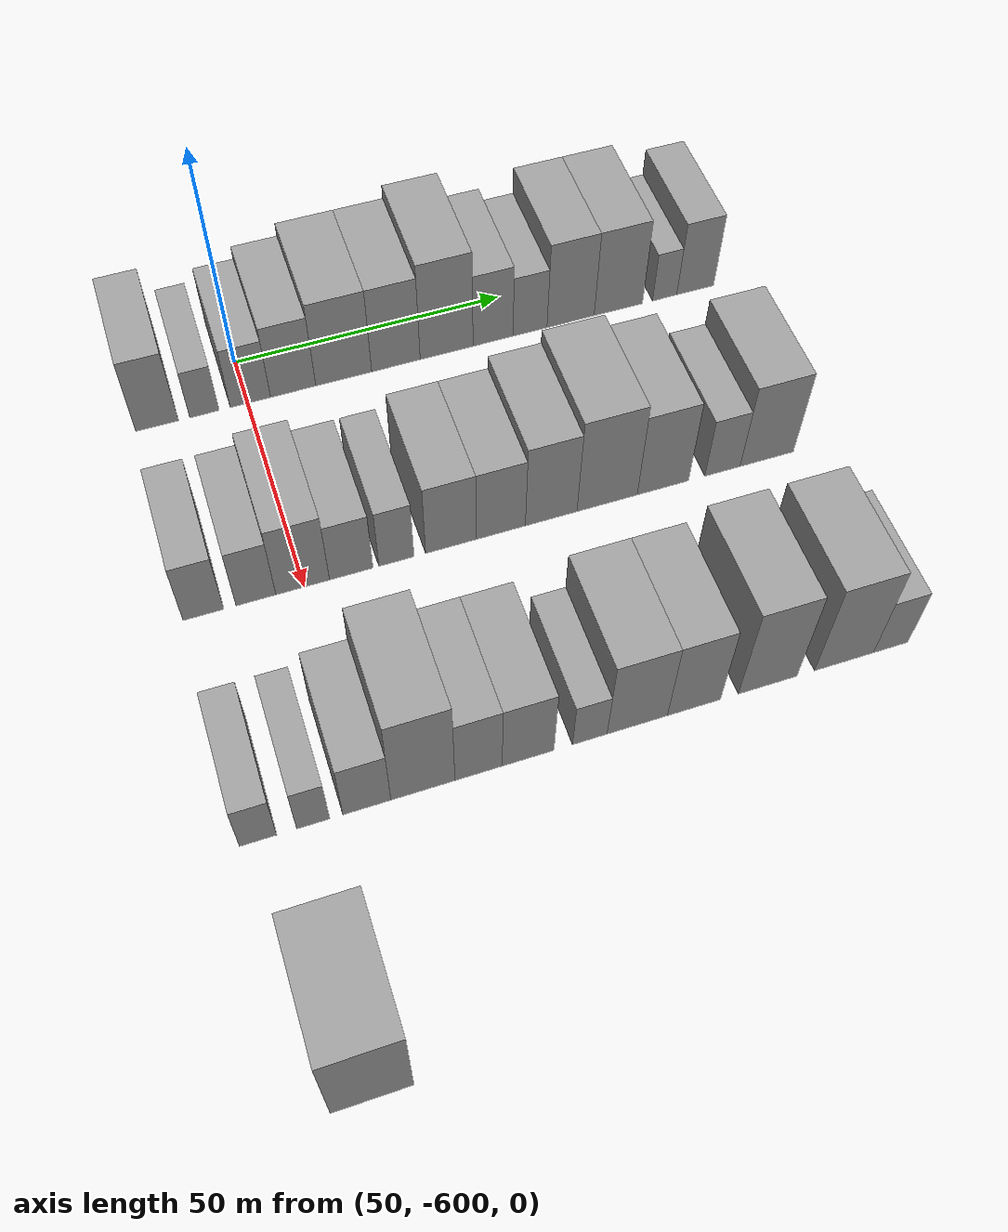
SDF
<sdf version="1.6">
 <world name="default">
  <model name="building_1">
   <static>1</static>
   <pose>50.0000 -616.2092 0 0.000000 0.000000 0.000000</pose>
   <link name="link">
    <pose>0 0 9.00 0 0 0</pose>
    <collision name="collision"><geometry><box><size>20.0000 7.5817 18.0000</size></box></geometry></collision>
    <visual name="visual">
     <cast_shadows>0</cast_shadows>
     <geometry><box><size>20.0000 7.5817 18.0000</size></box></geometry>
     <material>
      <script>
       <uri>model://grey_wall/materials/scripts</uri>
       <uri>model://grey_wall/materials/textures</uri>
       <name>vrc/grey_wall</name>
      </script>
     </material>
    </visual>
   </link>
  </model>
  <model name="building_2">
   <static>1</static>
   <pose>50.0000 -607.7861 0 0.000000 0.000000 0.000000</pose>
   <link name="link">
    <pose>0 0 6.00 0 0 0</pose>
    <collision name="collision"><geometry><box><size>20.0000 5.2644 12.0000</size></box></geometry></collision>
    <visual name="visual">
     <cast_shadows>0</cast_shadows>
     <geometry><box><size>20.0000 5.2644 12.0000</size></box></geometry>
     <material>
      <script>
       <uri>model://grey_wall/materials/scripts</uri>
       <uri>model://grey_wall/materials/textures</uri>
       <name>vrc/grey_wall</name>
      </script>
     </material>
    </visual>
   </link>
  </model>
  <model name="building_3">
   <static>1</static>
   <pose>50.0000 -599.5087 0 0.000000 0.000000 0.000000</pose>
   <link name="link">
    <pose>0 0 7.50 0 0 0</pose>
    <collision name="collision"><geometry><box><size>20.0000 7.2904 15.0000</size></box></geometry></collision>
    <visual name="visual">
     <cast_shadows>0</cast_shadows>
     <geometry><box><size>20.0000 7.2904 15.0000</size></box></geometry>
     <material>
      <script>
       <uri>model://grey_wall/materials/scripts</uri>
       <uri>model://grey_wall/materials/textures</uri>
       <name>vrc/grey_wall</name>
      </script>
     </material>
    </visual>
   </link>
  </model>
  <model name="building_4">
   <static>1</static>
   <pose>50.0000 -591.7277 0 0.000000 0.000000 0.000000</pose>
   <link name="link">
    <pose>0 0 9.00 0 0 0</pose>
    <collision name="collision"><geometry><box><size>20.0000 8.2717 18.0000</size></box></geometry></collision>
    <visual name="visual">
     <cast_shadows>0</cast_shadows>
     <geometry><box><size>20.0000 8.2717 18.0000</size></box></geometry>
     <material>
      <script>
       <uri>model://grey_wall/materials/scripts</uri>
       <uri>model://grey_wall/materials/textures</uri>
       <name>vrc/grey_wall</name>
      </script>
     </material>
    </visual>
   </link>
  </model>
  <model name="building_5">
   <static>1</static>
   <pose>50.0000 -582.4163 0 0.000000 0.000000 0.000000</pose>
   <link name="link">
    <pose>0 0 10.50 0 0 0</pose>
    <collision name="collision"><geometry><box><size>20.0000 10.3511 21.0000</size></box></geometry></collision>
    <visual name="visual">
     <cast_shadows>0</cast_shadows>
     <geometry><box><size>20.0000 10.3511 21.0000</size></box></geometry>
     <material>
      <script>
       <uri>model://grey_wall/materials/scripts</uri>
       <uri>model://grey_wall/materials/textures</uri>
       <name>vrc/grey_wall</name>
      </script>
     </material>
    </visual>
   </link>
  </model>
  <model name="building_6">
   <static>1</static>
   <pose>50.0000 -572.6963 0 0.000000 0.000000 0.000000</pose>
   <link name="link">
    <pose>0 0 10.50 0 0 0</pose>
    <collision name="collision"><geometry><box><size>20.0000 9.0889 21.0000</size></box></geometry></collision>
    <visual name="visual">
     <cast_shadows>0</cast_shadows>
     <geometry><box><size>20.0000 9.0889 21.0000</size></box></geometry>
     <material>
      <script>
       <uri>model://grey_wall/materials/scripts</uri>
       <uri>model://grey_wall/materials/textures</uri>
       <name>vrc/grey_wall</name>
      </script>
     </material>
    </visual>
   </link>
  </model>
  <model name="building_7">
   <static>1</static>
   <pose>50.0000 -563.1364 0 0.000000 0.000000 0.000000</pose>
   <link name="link">
    <pose>0 0 12.00 0 0 0</pose>
    <collision name="collision"><geometry><box><size>20.0000 10.0308 24.0000</size></box></geometry></collision>
    <visual name="visual">
     <cast_shadows>0</cast_shadows>
     <geometry><box><size>20.0000 10.0308 24.0000</size></box></geometry>
     <material>
      <script>
       <uri>model://grey_wall/materials/scripts</uri>
       <uri>model://grey_wall/materials/textures</uri>
       <name>vrc/grey_wall</name>
      </script>
     </material>
    </visual>
   </link>
  </model>
  <model name="building_8">
   <static>1</static>
   <pose>50.0000 -554.2968 0 0.000000 0.000000 0.000000</pose>
   <link name="link">
    <pose>0 0 9.00 0 0 0</pose>
    <collision name="collision"><geometry><box><size>20.0000 7.6485 18.0000</size></box></geometry></collision>
    <visual name="visual">
     <cast_shadows>0</cast_shadows>
     <geometry><box><size>20.0000 7.6485 18.0000</size></box></geometry>
     <material>
      <script>
       <uri>model://grey_wall/materials/scripts</uri>
       <uri>model://grey_wall/materials/textures</uri>
       <name>vrc/grey_wall</name>
      </script>
     </material>
    </visual>
   </link>
  </model>
  <model name="building_9">
   <static>1</static>
   <pose>50.0000 -547.1704 0 0.000000 0.000000 0.000000</pose>
   <link name="link">
    <pose>0 0 7.50 0 0 0</pose>
    <collision name="collision"><geometry><box><size>20.0000 6.6045 15.0000</size></box></geometry></collision>
    <visual name="visual">
     <cast_shadows>0</cast_shadows>
     <geometry><box><size>20.0000 6.6045 15.0000</size></box></geometry>
     <material>
      <script>
       <uri>model://grey_wall/materials/scripts</uri>
       <uri>model://grey_wall/materials/textures</uri>
       <name>vrc/grey_wall</name>
      </script>
     </material>
    </visual>
   </link>
  </model>
  <model name="building_10">
   <static>1</static>
   <pose>50.0000 -539.2522 0 0.000000 0.000000 0.000000</pose>
   <link name="link">
    <pose>0 0 10.50 0 0 0</pose>
    <collision name="collision"><geometry><box><size>20.0000 9.2319 21.0000</size></box></geometry></collision>
    <visual name="visual">
     <cast_shadows>0</cast_shadows>
     <geometry><box><size>20.0000 9.2319 21.0000</size></box></geometry>
     <material>
      <script>
       <uri>model://grey_wall/materials/scripts</uri>
       <uri>model://grey_wall/materials/textures</uri>
       <name>vrc/grey_wall</name>
      </script>
     </material>
    </visual>
   </link>
  </model>
  <model name="building_11">
   <static>1</static>
   <pose>50.0000 -529.8403 0 0.000000 0.000000 0.000000</pose>
   <link name="link">
    <pose>0 0 10.50 0 0 0</pose>
    <collision name="collision"><geometry><box><size>20.0000 9.5919 21.0000</size></box></geometry></collision>
    <visual name="visual">
     <cast_shadows>0</cast_shadows>
     <geometry><box><size>20.0000 9.5919 21.0000</size></box></geometry>
     <material>
      <script>
       <uri>model://grey_wall/materials/scripts</uri>
       <uri>model://grey_wall/materials/textures</uri>
       <name>vrc/grey_wall</name>
      </script>
     </material>
    </visual>
   </link>
  </model>
  <model name="building_12">
   <static>1</static>
   <pose>50.0000 -520.6214 0 0.000000 0.000000 0.000000</pose>
   <link name="link">
    <pose>0 0 6.00 0 0 0</pose>
    <collision name="collision"><geometry><box><size>20.0000 4.8460 12.0000</size></box></geometry></collision>
    <visual name="visual">
     <cast_shadows>0</cast_shadows>
     <geometry><box><size>20.0000 4.8460 12.0000</size></box></geometry>
     <material>
      <script>
       <uri>model://grey_wall/materials/scripts</uri>
       <uri>model://grey_wall/materials/textures</uri>
       <name>vrc/grey_wall</name>
      </script>
     </material>
    </visual>
   </link>
  </model>
  <model name="building_13">
   <static>1</static>
   <pose>50.0000 -514.4688 0 0.000000 0.000000 0.000000</pose>
   <link name="link">
    <pose>0 0 9.00 0 0 0</pose>
    <collision name="collision"><geometry><box><size>20.0000 7.4591 18.0000</size></box></geometry></collision>
    <visual name="visual">
     <cast_shadows>0</cast_shadows>
     <geometry><box><size>20.0000 7.4591 18.0000</size></box></geometry>
     <material>
      <script>
       <uri>model://grey_wall/materials/scripts</uri>
       <uri>model://grey_wall/materials/textures</uri>
       <name>vrc/grey_wall</name>
      </script>
     </material>
    </visual>
   </link>
  </model>
  <model name="building_126">
   <static>1</static>
   <pose>90.0000 -616.6560 0 0.000000 0.000000 0.000000</pose>
   <link name="link">
    <pose>0 0 7.50 0 0 0</pose>
    <collision name="collision"><geometry><box><size>20.0000 6.6879 15.0000</size></box></geometry></collision>
    <visual name="visual">
     <cast_shadows>0</cast_shadows>
     <geometry><box><size>20.0000 6.6879 15.0000</size></box></geometry>
     <material>
      <script>
       <uri>model://grey_wall/materials/scripts</uri>
       <uri>model://grey_wall/materials/textures</uri>
       <name>vrc/grey_wall</name>
      </script>
     </material>
    </visual>
   </link>
  </model>
  <model name="building_127">
   <static>1</static>
   <pose>90.0000 -608.0186 0 0.000000 0.000000 0.000000</pose>
   <link name="link">
    <pose>0 0 7.50 0 0 0</pose>
    <collision name="collision"><geometry><box><size>20.0000 6.5870 15.0000</size></box></geometry></collision>
    <visual name="visual">
     <cast_shadows>0</cast_shadows>
     <geometry><box><size>20.0000 6.5870 15.0000</size></box></geometry>
     <material>
      <script>
       <uri>model://grey_wall/materials/scripts</uri>
       <uri>model://grey_wall/materials/textures</uri>
       <name>vrc/grey_wall</name>
      </script>
     </material>
    </visual>
   </link>
  </model>
  <model name="building_128">
   <static>1</static>
   <pose>90.0000 -600.2332 0 0.000000 0.000000 0.000000</pose>
   <link name="link">
    <pose>0 0 9.00 0 0 0</pose>
    <collision name="collision"><geometry><box><size>20.0000 8.9839 18.0000</size></box></geometry></collision>
    <visual name="visual">
     <cast_shadows>0</cast_shadows>
     <geometry><box><size>20.0000 8.9839 18.0000</size></box></geometry>
     <material>
      <script>
       <uri>model://grey_wall/materials/scripts</uri>
       <uri>model://grey_wall/materials/textures</uri>
       <name>vrc/grey_wall</name>
      </script>
     </material>
    </visual>
   </link>
  </model>
  <model name="building_129">
   <static>1</static>
   <pose>90.0000 -592.0565 0 0.000000 0.000000 0.000000</pose>
   <link name="link">
    <pose>0 0 7.50 0 0 0</pose>
    <collision name="collision"><geometry><box><size>20.0000 7.3694 15.0000</size></box></geometry></collision>
    <visual name="visual">
     <cast_shadows>0</cast_shadows>
     <geometry><box><size>20.0000 7.3694 15.0000</size></box></geometry>
     <material>
      <script>
       <uri>model://grey_wall/materials/scripts</uri>
       <uri>model://grey_wall/materials/textures</uri>
       <name>vrc/grey_wall</name>
      </script>
     </material>
    </visual>
   </link>
  </model>
  <model name="building_130">
   <static>1</static>
   <pose>90.0000 -584.3663 0 0.000000 0.000000 0.000000</pose>
   <link name="link">
    <pose>0 0 7.50 0 0 0</pose>
    <collision name="collision"><geometry><box><size>20.0000 6.0110 15.0000</size></box></geometry></collision>
    <visual name="visual">
     <cast_shadows>0</cast_shadows>
     <geometry><box><size>20.0000 6.0110 15.0000</size></box></geometry>
     <material>
      <script>
       <uri>model://grey_wall/materials/scripts</uri>
       <uri>model://grey_wall/materials/textures</uri>
       <name>vrc/grey_wall</name>
      </script>
     </material>
    </visual>
   </link>
  </model>
  <model name="building_131">
   <static>1</static>
   <pose>90.0000 -574.9528 0 0.000000 0.000000 0.000000</pose>
   <link name="link">
    <pose>0 0 9.00 0 0 0</pose>
    <collision name="collision"><geometry><box><size>20.0000 8.8160 18.0000</size></box></geometry></collision>
    <visual name="visual">
     <cast_shadows>0</cast_shadows>
     <geometry><box><size>20.0000 8.8160 18.0000</size></box></geometry>
     <material>
      <script>
       <uri>model://grey_wall/materials/scripts</uri>
       <uri>model://grey_wall/materials/textures</uri>
       <name>vrc/grey_wall</name>
      </script>
     </material>
    </visual>
   </link>
  </model>
  <model name="building_132">
   <static>1</static>
   <pose>90.0000 -566.2503 0 0.000000 0.000000 0.000000</pose>
   <link name="link">
    <pose>0 0 9.00 0 0 0</pose>
    <collision name="collision"><geometry><box><size>20.0000 8.5891 18.0000</size></box></geometry></collision>
    <visual name="visual">
     <cast_shadows>0</cast_shadows>
     <geometry><box><size>20.0000 8.5891 18.0000</size></box></geometry>
     <material>
      <script>
       <uri>model://grey_wall/materials/scripts</uri>
       <uri>model://grey_wall/materials/textures</uri>
       <name>vrc/grey_wall</name>
      </script>
     </material>
    </visual>
   </link>
  </model>
  <model name="building_133">
   <static>1</static>
   <pose>90.0000 -557.3646 0 0.000000 0.000000 0.000000</pose>
   <link name="link">
    <pose>0 0 10.50 0 0 0</pose>
    <collision name="collision"><geometry><box><size>20.0000 9.1823 21.0000</size></box></geometry></collision>
    <visual name="visual">
     <cast_shadows>0</cast_shadows>
     <geometry><box><size>20.0000 9.1823 21.0000</size></box></geometry>
     <material>
      <script>
       <uri>model://grey_wall/materials/scripts</uri>
       <uri>model://grey_wall/materials/textures</uri>
       <name>vrc/grey_wall</name>
      </script>
     </material>
    </visual>
   </link>
  </model>
  <model name="building_134">
   <static>1</static>
   <pose>90.0000 -547.3345 0 0.000000 0.000000 0.000000</pose>
   <link name="link">
    <pose>0 0 12.00 0 0 0</pose>
    <collision name="collision"><geometry><box><size>20.0000 10.8779 24.0000</size></box></geometry></collision>
    <visual name="visual">
     <cast_shadows>0</cast_shadows>
     <geometry><box><size>20.0000 10.8779 24.0000</size></box></geometry>
     <material>
      <script>
       <uri>model://grey_wall/materials/scripts</uri>
       <uri>model://grey_wall/materials/textures</uri>
       <name>vrc/grey_wall</name>
      </script>
     </material>
    </visual>
   </link>
  </model>
  <model name="building_135">
   <static>1</static>
   <pose>90.0000 -537.1961 0 0.000000 0.000000 0.000000</pose>
   <link name="link">
    <pose>0 0 10.50 0 0 0</pose>
    <collision name="collision"><geometry><box><size>20.0000 9.3988 21.0000</size></box></geometry></collision>
    <visual name="visual">
     <cast_shadows>0</cast_shadows>
     <geometry><box><size>20.0000 9.3988 21.0000</size></box></geometry>
     <material>
      <script>
       <uri>model://grey_wall/materials/scripts</uri>
       <uri>model://grey_wall/materials/textures</uri>
       <name>vrc/grey_wall</name>
      </script>
     </material>
    </visual>
   </link>
  </model>
  <model name="building_136">
   <static>1</static>
   <pose>90.0000 -526.2294 0 0.000000 0.000000 0.000000</pose>
   <link name="link">
    <pose>0 0 7.50 0 0 0</pose>
    <collision name="collision"><geometry><box><size>20.0000 6.5344 15.0000</size></box></geometry></collision>
    <visual name="visual">
     <cast_shadows>0</cast_shadows>
     <geometry><box><size>20.0000 6.5344 15.0000</size></box></geometry>
     <material>
      <script>
       <uri>model://grey_wall/materials/scripts</uri>
       <uri>model://grey_wall/materials/textures</uri>
       <name>vrc/grey_wall</name>
      </script>
     </material>
    </visual>
   </link>
  </model>
  <model name="building_137">
   <static>1</static>
   <pose>90.0000 -517.9398 0 0.000000 0.000000 0.000000</pose>
   <link name="link">
    <pose>0 0 10.50 0 0 0</pose>
    <collision name="collision"><geometry><box><size>20.0000 10.0449 21.0000</size></box></geometry></collision>
    <visual name="visual">
     <cast_shadows>0</cast_shadows>
     <geometry><box><size>20.0000 10.0449 21.0000</size></box></geometry>
     <material>
      <script>
       <uri>model://grey_wall/materials/scripts</uri>
       <uri>model://grey_wall/materials/textures</uri>
       <name>vrc/grey_wall</name>
      </script>
     </material>
    </visual>
   </link>
  </model>
  <model name="building_261">
   <static>1</static>
   <pose>130.0000 -617.2002 0 0.000000 0.000000 0.000000</pose>
   <link name="link">
    <pose>0 0 6.00 0 0 0</pose>
    <collision name="collision"><geometry><box><size>20.0000 5.5997 12.0000</size></box></geometry></collision>
    <visual name="visual">
     <cast_shadows>0</cast_shadows>
     <geometry><box><size>20.0000 5.5997 12.0000</size></box></geometry>
     <material>
      <script>
       <uri>model://grey_wall/materials/scripts</uri>
       <uri>model://grey_wall/materials/textures</uri>
       <name>vrc/grey_wall</name>
      </script>
     </material>
    </visual>
   </link>
  </model>
  <model name="building_262">
   <static>1</static>
   <pose>130.0000 -608.8896 0 0.000000 0.000000 0.000000</pose>
   <link name="link">
    <pose>0 0 6.00 0 0 0</pose>
    <collision name="collision"><geometry><box><size>20.0000 5.0214 12.0000</size></box></geometry></collision>
    <visual name="visual">
     <cast_shadows>0</cast_shadows>
     <geometry><box><size>20.0000 5.0214 12.0000</size></box></geometry>
     <material>
      <script>
       <uri>model://grey_wall/materials/scripts</uri>
       <uri>model://grey_wall/materials/textures</uri>
       <name>vrc/grey_wall</name>
      </script>
     </material>
    </visual>
   </link>
  </model>
  <model name="building_263">
   <static>1</static>
   <pose>130.0000 -600.6864 0 0.000000 0.000000 0.000000</pose>
   <link name="link">
    <pose>0 0 7.50 0 0 0</pose>
    <collision name="collision"><geometry><box><size>20.0000 7.3850 15.0000</size></box></geometry></collision>
    <visual name="visual">
     <cast_shadows>0</cast_shadows>
     <geometry><box><size>20.0000 7.3850 15.0000</size></box></geometry>
     <material>
      <script>
       <uri>model://grey_wall/materials/scripts</uri>
       <uri>model://grey_wall/materials/textures</uri>
       <name>vrc/grey_wall</name>
      </script>
     </material>
    </visual>
   </link>
  </model>
  <model name="building_264">
   <static>1</static>
   <pose>130.0000 -591.9987 0 0.000000 0.000000 0.000000</pose>
   <link name="link">
    <pose>0 0 12.00 0 0 0</pose>
    <collision name="collision"><geometry><box><size>20.0000 9.9903 24.0000</size></box></geometry></collision>
    <visual name="visual">
     <cast_shadows>0</cast_shadows>
     <geometry><box><size>20.0000 9.9903 24.0000</size></box></geometry>
     <material>
      <script>
       <uri>model://grey_wall/materials/scripts</uri>
       <uri>model://grey_wall/materials/textures</uri>
       <name>vrc/grey_wall</name>
      </script>
     </material>
    </visual>
   </link>
  </model>
  <model name="building_265">
   <static>1</static>
   <pose>130.0000 -583.2763 0 0.000000 0.000000 0.000000</pose>
   <link name="link">
    <pose>0 0 9.00 0 0 0</pose>
    <collision name="collision"><geometry><box><size>20.0000 7.4545 18.0000</size></box></geometry></collision>
    <visual name="visual">
     <cast_shadows>0</cast_shadows>
     <geometry><box><size>20.0000 7.4545 18.0000</size></box></geometry>
     <material>
      <script>
       <uri>model://grey_wall/materials/scripts</uri>
       <uri>model://grey_wall/materials/textures</uri>
       <name>vrc/grey_wall</name>
      </script>
     </material>
    </visual>
   </link>
  </model>
  <model name="building_266">
   <static>1</static>
   <pose>130.0000 -575.3948 0 0.000000 0.000000 0.000000</pose>
   <link name="link">
    <pose>0 0 9.00 0 0 0</pose>
    <collision name="collision"><geometry><box><size>20.0000 8.3086 18.0000</size></box></geometry></collision>
    <visual name="visual">
     <cast_shadows>0</cast_shadows>
     <geometry><box><size>20.0000 8.3086 18.0000</size></box></geometry>
     <material>
      <script>
       <uri>model://grey_wall/materials/scripts</uri>
       <uri>model://grey_wall/materials/textures</uri>
       <name>vrc/grey_wall</name>
      </script>
     </material>
    </visual>
   </link>
  </model>
  <model name="building_267">
   <static>1</static>
   <pose>130.0000 -565.4395 0 0.000000 0.000000 0.000000</pose>
   <link name="link">
    <pose>0 0 6.00 0 0 0</pose>
    <collision name="collision"><geometry><box><size>20.0000 5.6020 12.0000</size></box></geometry></collision>
    <visual name="visual">
     <cast_shadows>0</cast_shadows>
     <geometry><box><size>20.0000 5.6020 12.0000</size></box></geometry>
     <material>
      <script>
       <uri>model://grey_wall/materials/scripts</uri>
       <uri>model://grey_wall/materials/textures</uri>
       <name>vrc/grey_wall</name>
      </script>
     </material>
    </visual>
   </link>
  </model>
  <model name="building_268">
   <static>1</static>
   <pose>130.0000 -557.6693 0 0.000000 0.000000 0.000000</pose>
   <link name="link">
    <pose>0 0 10.50 0 0 0</pose>
    <collision name="collision"><geometry><box><size>20.0000 9.9383 21.0000</size></box></geometry></collision>
    <visual name="visual">
     <cast_shadows>0</cast_shadows>
     <geometry><box><size>20.0000 9.9383 21.0000</size></box></geometry>
     <material>
      <script>
       <uri>model://grey_wall/materials/scripts</uri>
       <uri>model://grey_wall/materials/textures</uri>
       <name>vrc/grey_wall</name>
      </script>
     </material>
    </visual>
   </link>
  </model>
  <model name="building_269">
   <static>1</static>
   <pose>130.0000 -548.2627 0 0.000000 0.000000 0.000000</pose>
   <link name="link">
    <pose>0 0 10.50 0 0 0</pose>
    <collision name="collision"><geometry><box><size>20.0000 8.8751 21.0000</size></box></geometry></collision>
    <visual name="visual">
     <cast_shadows>0</cast_shadows>
     <geometry><box><size>20.0000 8.8751 21.0000</size></box></geometry>
     <material>
      <script>
       <uri>model://grey_wall/materials/scripts</uri>
       <uri>model://grey_wall/materials/textures</uri>
       <name>vrc/grey_wall</name>
      </script>
     </material>
    </visual>
   </link>
  </model>
  <model name="building_270">
   <static>1</static>
   <pose>130.0000 -535.8250 0 0.000000 0.000000 0.000000</pose>
   <link name="link">
    <pose>0 0 12.00 0 0 0</pose>
    <collision name="collision"><geometry><box><size>20.0000 10.0003 24.0000</size></box></geometry></collision>
    <visual name="visual">
     <cast_shadows>0</cast_shadows>
     <geometry><box><size>20.0000 10.0003 24.0000</size></box></geometry>
     <material>
      <script>
       <uri>model://grey_wall/materials/scripts</uri>
       <uri>model://grey_wall/materials/textures</uri>
       <name>vrc/grey_wall</name>
      </script>
     </material>
    </visual>
   </link>
  </model>
  <model name="building_271">
   <static>1</static>
   <pose>130.0000 -522.7123 0 0.000000 0.000000 0.000000</pose>
   <link name="link">
    <pose>0 0 12.00 0 0 0</pose>
    <collision name="collision"><geometry><box><size>20.0000 10.2251 24.0000</size></box></geometry></collision>
    <visual name="visual">
     <cast_shadows>0</cast_shadows>
     <geometry><box><size>20.0000 10.2251 24.0000</size></box></geometry>
     <material>
      <script>
       <uri>model://grey_wall/materials/scripts</uri>
       <uri>model://grey_wall/materials/textures</uri>
       <name>vrc/grey_wall</name>
      </script>
     </material>
    </visual>
   </link>
  </model>
  <model name="building_272">
   <static>1</static>
   <pose>130.0000 -514.5746 0 0.000000 0.000000 0.000000</pose>
   <link name="link">
    <pose>0 0 7.50 0 0 0</pose>
    <collision name="collision"><geometry><box><size>20.0000 6.0504 15.0000</size></box></geometry></collision>
    <visual name="visual">
     <cast_shadows>0</cast_shadows>
     <geometry><box><size>20.0000 6.0504 15.0000</size></box></geometry>
     <material>
      <script>
       <uri>model://grey_wall/materials/scripts</uri>
       <uri>model://grey_wall/materials/textures</uri>
       <name>vrc/grey_wall</name>
      </script>
     </material>
    </visual>
   </link>
  </model>
  <model name="building_398">
   <static>1</static>
   <pose>170.0000 -611.2219 0 0.000000 0.000000 0.000000</pose>
   <link name="link">
    <pose>0 0 12.00 0 0 0</pose>
    <collision name="collision"><geometry><box><size>20.0000 11.5563 24.0000</size></box></geometry></collision>
    <visual name="visual">
     <cast_shadows>0</cast_shadows>
     <geometry><box><size>20.0000 11.5563 24.0000</size></box></geometry>
     <material>
      <script>
       <uri>model://grey_wall/materials/scripts</uri>
       <uri>model://grey_wall/materials/textures</uri>
       <name>vrc/grey_wall</name>
      </script>
     </material>
    </visual>
   </link>
  </model>
 </world>
</sdf>
